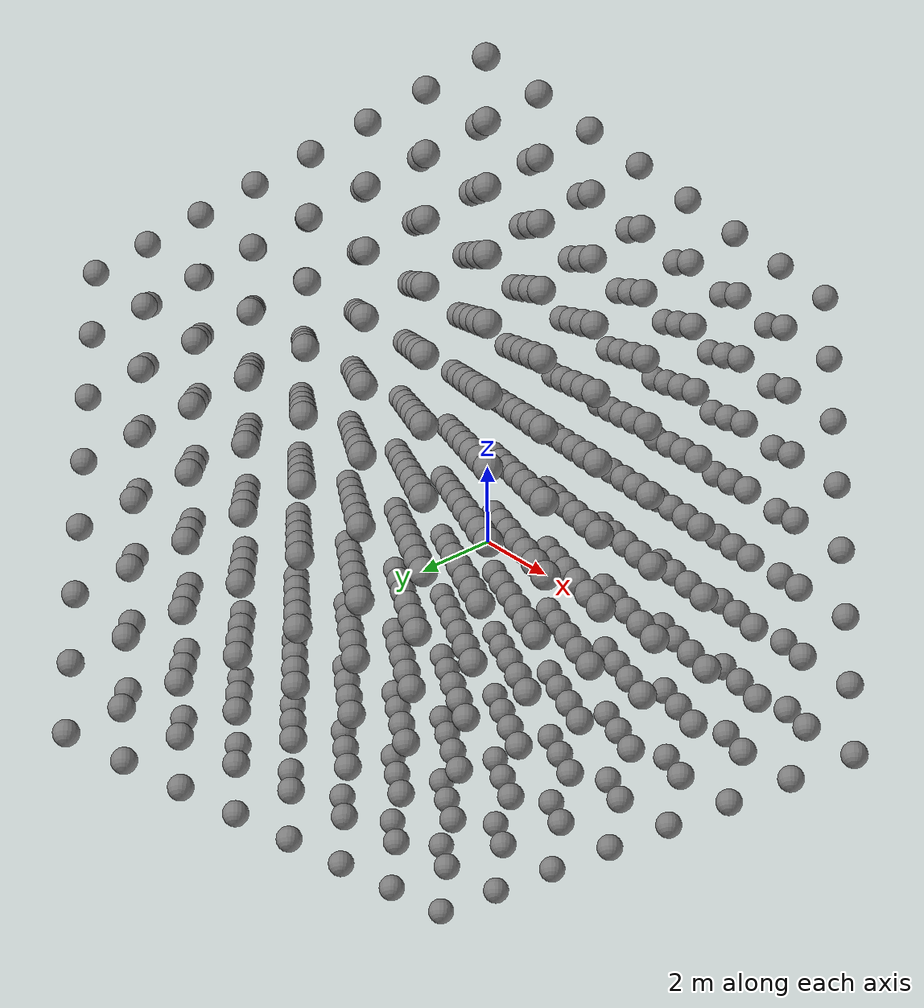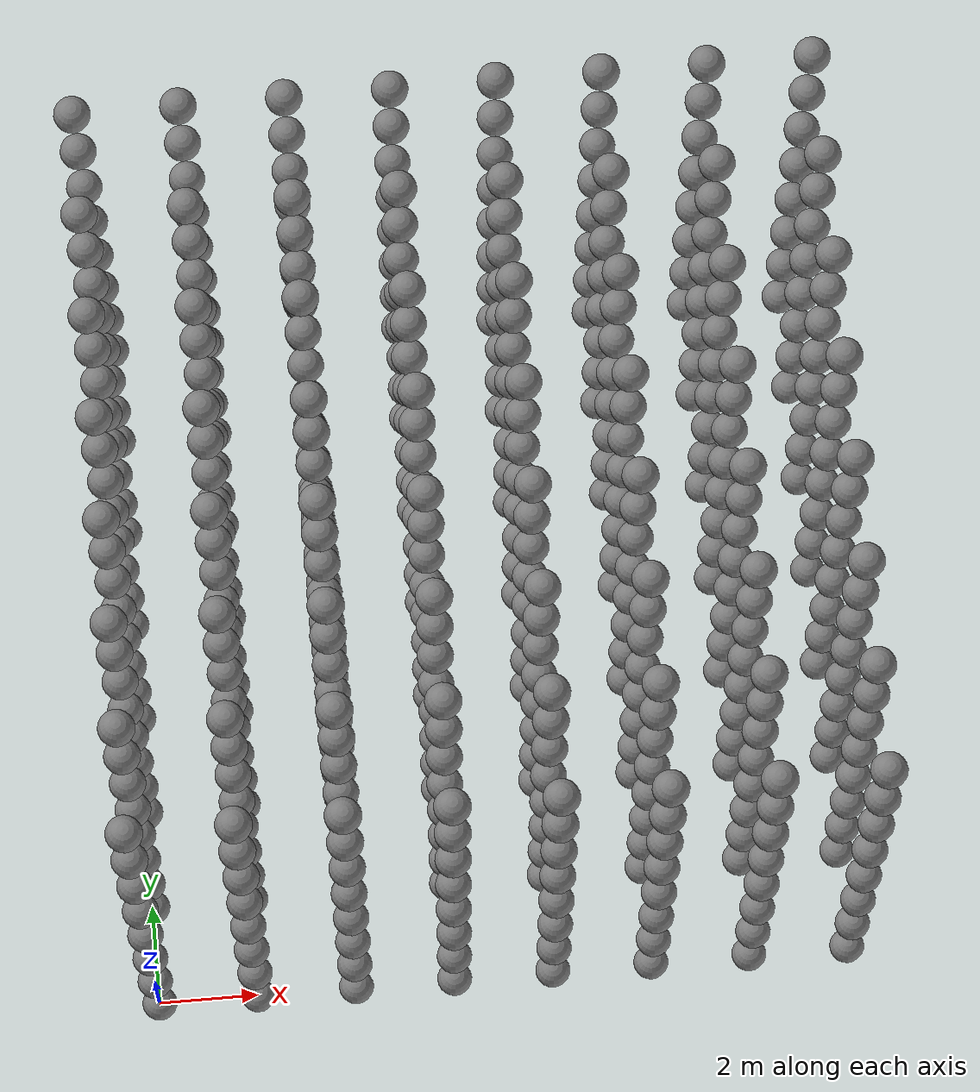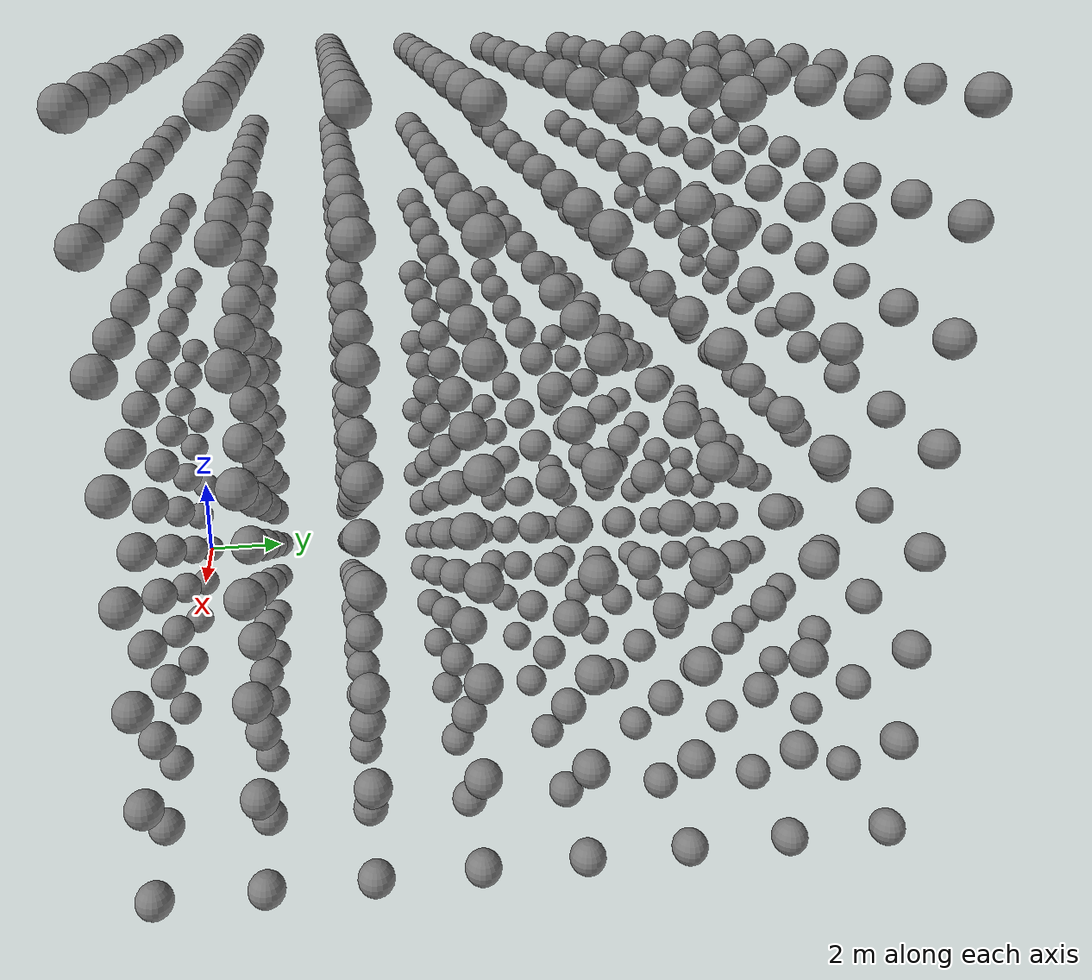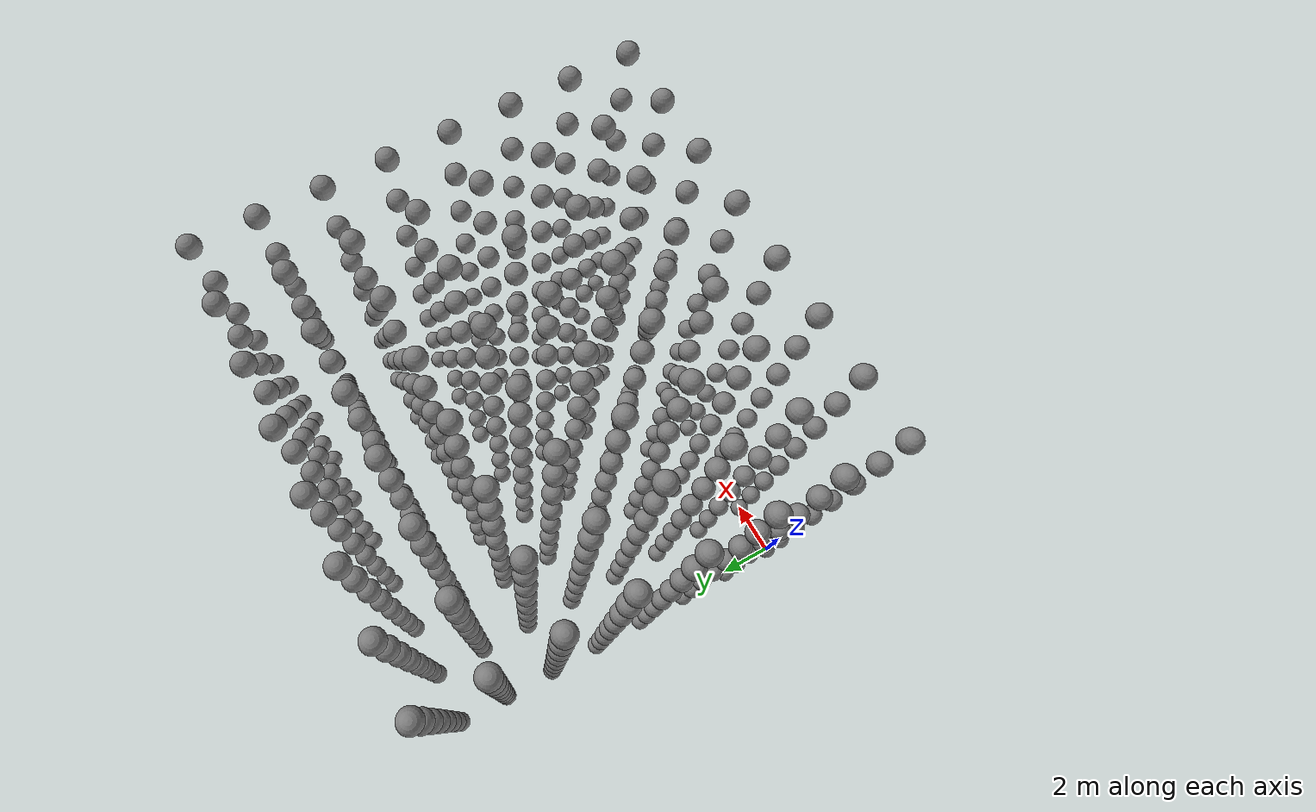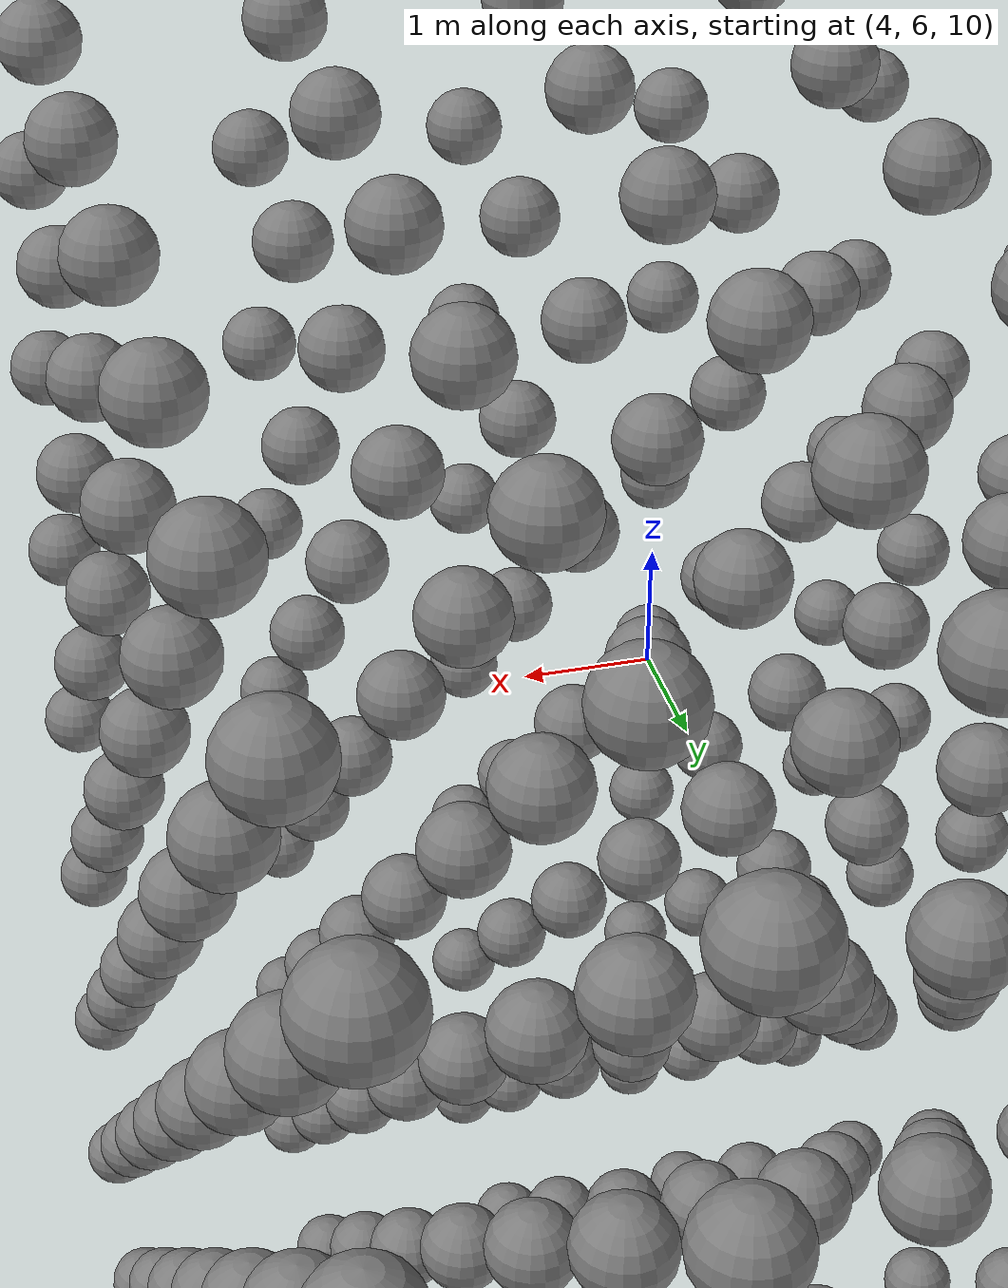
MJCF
<mujoco><option ccd_iterations="100"/><worldbody><body pos="0 0 0"><freejoint/><geom type="sphere" size=".35 .4 .45"/></body><body pos="2 0 0"><freejoint/><geom type="sphere" size=".35 .4 .45"/></body><body pos="4 0 0"><freejoint/><geom type="sphere" size=".35 .4 .45"/></body><body pos="6 0 0"><freejoint/><geom type="sphere" size=".35 .4 .45"/></body><body pos="8 0 0"><freejoint/><geom type="sphere" size=".35 .4 .45"/></body><body pos="10 0 0"><freejoint/><geom type="sphere" size=".35 .4 .45"/></body><body pos="12 0 0"><freejoint/><geom type="sphere" size=".35 .4 .45"/></body><body pos="14 0 0"><freejoint/><geom type="sphere" size=".35 .4 .45"/></body><body pos="0 2 0"><freejoint/><geom type="sphere" size=".35 .4 .45"/></body><body pos="2 2 0"><freejoint/><geom type="sphere" size=".35 .4 .45"/></body><body pos="4 2 0"><freejoint/><geom type="sphere" size=".35 .4 .45"/></body><body pos="6 2 0"><freejoint/><geom type="sphere" size=".35 .4 .45"/></body><body pos="8 2 0"><freejoint/><geom type="sphere" size=".35 .4 .45"/></body><body pos="10 2 0"><freejoint/><geom type="sphere" size=".35 .4 .45"/></body><body pos="12 2 0"><freejoint/><geom type="sphere" size=".35 .4 .45"/></body><body pos="14 2 0"><freejoint/><geom type="sphere" size=".35 .4 .45"/></body><body pos="0 4 0"><freejoint/><geom type="sphere" size=".35 .4 .45"/></body><body pos="2 4 0"><freejoint/><geom type="sphere" size=".35 .4 .45"/></body><body pos="4 4 0"><freejoint/><geom type="sphere" size=".35 .4 .45"/></body><body pos="6 4 0"><freejoint/><geom type="sphere" size=".35 .4 .45"/></body><body pos="8 4 0"><freejoint/><geom type="sphere" size=".35 .4 .45"/></body><body pos="10 4 0"><freejoint/><geom type="sphere" size=".35 .4 .45"/></body><body pos="12 4 0"><freejoint/><geom type="sphere" size=".35 .4 .45"/></body><body pos="14 4 0"><freejoint/><geom type="sphere" size=".35 .4 .45"/></body><body pos="0 6 0"><freejoint/><geom type="sphere" size=".35 .4 .45"/></body><body pos="2 6 0"><freejoint/><geom type="sphere" size=".35 .4 .45"/></body><body pos="4 6 0"><freejoint/><geom type="sphere" size=".35 .4 .45"/></body><body pos="6 6 0"><freejoint/><geom type="sphere" size=".35 .4 .45"/></body><body pos="8 6 0"><freejoint/><geom type="sphere" size=".35 .4 .45"/></body><body pos="10 6 0"><freejoint/><geom type="sphere" size=".35 .4 .45"/></body><body pos="12 6 0"><freejoint/><geom type="sphere" size=".35 .4 .45"/></body><body pos="14 6 0"><freejoint/><geom type="sphere" size=".35 .4 .45"/></body><body pos="0 8 0"><freejoint/><geom type="sphere" size=".35 .4 .45"/></body><body pos="2 8 0"><freejoint/><geom type="sphere" size=".35 .4 .45"/></body><body pos="4 8 0"><freejoint/><geom type="sphere" size=".35 .4 .45"/></body><body pos="6 8 0"><freejoint/><geom type="sphere" size=".35 .4 .45"/></body><body pos="8 8 0"><freejoint/><geom type="sphere" size=".35 .4 .45"/></body><body pos="10 8 0"><freejoint/><geom type="sphere" size=".35 .4 .45"/></body><body pos="12 8 0"><freejoint/><geom type="sphere" size=".35 .4 .45"/></body><body pos="14 8 0"><freejoint/><geom type="sphere" size=".35 .4 .45"/></body><body pos="0 10 0"><freejoint/><geom type="sphere" size=".35 .4 .45"/></body><body pos="2 10 0"><freejoint/><geom type="sphere" size=".35 .4 .45"/></body><body pos="4 10 0"><freejoint/><geom type="sphere" size=".35 .4 .45"/></body><body pos="6 10 0"><freejoint/><geom type="sphere" size=".35 .4 .45"/></body><body pos="8 10 0"><freejoint/><geom type="sphere" size=".35 .4 .45"/></body><body pos="10 10 0"><freejoint/><geom type="sphere" size=".35 .4 .45"/></body><body pos="12 10 0"><freejoint/><geom type="sphere" size=".35 .4 .45"/></body><body pos="14 10 0"><freejoint/><geom type="sphere" size=".35 .4 .45"/></body><body pos="0 12 0"><freejoint/><geom type="sphere" size=".35 .4 .45"/></body><body pos="2 12 0"><freejoint/><geom type="sphere" size=".35 .4 .45"/></body><body pos="4 12 0"><freejoint/><geom type="sphere" size=".35 .4 .45"/></body><body pos="6 12 0"><freejoint/><geom type="sphere" size=".35 .4 .45"/></body><body pos="8 12 0"><freejoint/><geom type="sphere" size=".35 .4 .45"/></body><body pos="10 12 0"><freejoint/><geom type="sphere" size=".35 .4 .45"/></body><body pos="12 12 0"><freejoint/><geom type="sphere" size=".35 .4 .45"/></body><body pos="14 12 0"><freejoint/><geom type="sphere" size=".35 .4 .45"/></body><body pos="0 14 0"><freejoint/><geom type="sphere" size=".35 .4 .45"/></body><body pos="2 14 0"><freejoint/><geom type="sphere" size=".35 .4 .45"/></body><body pos="4 14 0"><freejoint/><geom type="sphere" size=".35 .4 .45"/></body><body pos="6 14 0"><freejoint/><geom type="sphere" size=".35 .4 .45"/></body><body pos="8 14 0"><freejoint/><geom type="sphere" size=".35 .4 .45"/></body><body pos="10 14 0"><freejoint/><geom type="sphere" size=".35 .4 .45"/></body><body pos="12 14 0"><freejoint/><geom type="sphere" size=".35 .4 .45"/></body><body pos="14 14 0"><freejoint/><geom type="sphere" size=".35 .4 .45"/></body><body pos="0 0 2"><freejoint/><geom type="sphere" size=".35 .4 .45"/></body><body pos="2 0 2"><freejoint/><geom type="sphere" size=".35 .4 .45"/></body><body pos="4 0 2"><freejoint/><geom type="sphere" size=".35 .4 .45"/></body><body pos="6 0 2"><freejoint/><geom type="sphere" size=".35 .4 .45"/></body><body pos="8 0 2"><freejoint/><geom type="sphere" size=".35 .4 .45"/></body><body pos="10 0 2"><freejoint/><geom type="sphere" size=".35 .4 .45"/></body><body pos="12 0 2"><freejoint/><geom type="sphere" size=".35 .4 .45"/></body><body pos="14 0 2"><freejoint/><geom type="sphere" size=".35 .4 .45"/></body><body pos="0 2 2"><freejoint/><geom type="sphere" size=".35 .4 .45"/></body><body pos="2 2 2"><freejoint/><geom type="sphere" size=".35 .4 .45"/></body><body pos="4 2 2"><freejoint/><geom type="sphere" size=".35 .4 .45"/></body><body pos="6 2 2"><freejoint/><geom type="sphere" size=".35 .4 .45"/></body><body pos="8 2 2"><freejoint/><geom type="sphere" size=".35 .4 .45"/></body><body pos="10 2 2"><freejoint/><geom type="sphere" size=".35 .4 .45"/></body><body pos="12 2 2"><freejoint/><geom type="sphere" size=".35 .4 .45"/></body><body pos="14 2 2"><freejoint/><geom type="sphere" size=".35 .4 .45"/></body><body pos="0 4 2"><freejoint/><geom type="sphere" size=".35 .4 .45"/></body><body pos="2 4 2"><freejoint/><geom type="sphere" size=".35 .4 .45"/></body><body pos="4 4 2"><freejoint/><geom type="sphere" size=".35 .4 .45"/></body><body pos="6 4 2"><freejoint/><geom type="sphere" size=".35 .4 .45"/></body><body pos="8 4 2"><freejoint/><geom type="sphere" size=".35 .4 .45"/></body><body pos="10 4 2"><freejoint/><geom type="sphere" size=".35 .4 .45"/></body><body pos="12 4 2"><freejoint/><geom type="sphere" size=".35 .4 .45"/></body><body pos="14 4 2"><freejoint/><geom type="sphere" size=".35 .4 .45"/></body><body pos="0 6 2"><freejoint/><geom type="sphere" size=".35 .4 .45"/></body><body pos="2 6 2"><freejoint/><geom type="sphere" size=".35 .4 .45"/></body><body pos="4 6 2"><freejoint/><geom type="sphere" size=".35 .4 .45"/></body><body pos="6 6 2"><freejoint/><geom type="sphere" size=".35 .4 .45"/></body><body pos="8 6 2"><freejoint/><geom type="sphere" size=".35 .4 .45"/></body><body pos="10 6 2"><freejoint/><geom type="sphere" size=".35 .4 .45"/></body><body pos="12 6 2"><freejoint/><geom type="sphere" size=".35 .4 .45"/></body><body pos="14 6 2"><freejoint/><geom type="sphere" size=".35 .4 .45"/></body><body pos="0 8 2"><freejoint/><geom type="sphere" size=".35 .4 .45"/></body><body pos="2 8 2"><freejoint/><geom type="sphere" size=".35 .4 .45"/></body><body pos="4 8 2"><freejoint/><geom type="sphere" size=".35 .4 .45"/></body><body pos="6 8 2"><freejoint/><geom type="sphere" size=".35 .4 .45"/></body><body pos="8 8 2"><freejoint/><geom type="sphere" size=".35 .4 .45"/></body><body pos="10 8 2"><freejoint/><geom type="sphere" size=".35 .4 .45"/></body><body pos="12 8 2"><freejoint/><geom type="sphere" size=".35 .4 .45"/></body><body pos="14 8 2"><freejoint/><geom type="sphere" size=".35 .4 .45"/></body><body pos="0 10 2"><freejoint/><geom type="sphere" size=".35 .4 .45"/></body><body pos="2 10 2"><freejoint/><geom type="sphere" size=".35 .4 .45"/></body><body pos="4 10 2"><freejoint/><geom type="sphere" size=".35 .4 .45"/></body><body pos="6 10 2"><freejoint/><geom type="sphere" size=".35 .4 .45"/></body><body pos="8 10 2"><freejoint/><geom type="sphere" size=".35 .4 .45"/></body><body pos="10 10 2"><freejoint/><geom type="sphere" size=".35 .4 .45"/></body><body pos="12 10 2"><freejoint/><geom type="sphere" size=".35 .4 .45"/></body><body pos="14 10 2"><freejoint/><geom type="sphere" size=".35 .4 .45"/></body><body pos="0 12 2"><freejoint/><geom type="sphere" size=".35 .4 .45"/></body><body pos="2 12 2"><freejoint/><geom type="sphere" size=".35 .4 .45"/></body><body pos="4 12 2"><freejoint/><geom type="sphere" size=".35 .4 .45"/></body><body pos="6 12 2"><freejoint/><geom type="sphere" size=".35 .4 .45"/></body><body pos="8 12 2"><freejoint/><geom type="sphere" size=".35 .4 .45"/></body><body pos="10 12 2"><freejoint/><geom type="sphere" size=".35 .4 .45"/></body><body pos="12 12 2"><freejoint/><geom type="sphere" size=".35 .4 .45"/></body><body pos="14 12 2"><freejoint/><geom type="sphere" size=".35 .4 .45"/></body><body pos="0 14 2"><freejoint/><geom type="sphere" size=".35 .4 .45"/></body><body pos="2 14 2"><freejoint/><geom type="sphere" size=".35 .4 .45"/></body><body pos="4 14 2"><freejoint/><geom type="sphere" size=".35 .4 .45"/></body><body pos="6 14 2"><freejoint/><geom type="sphere" size=".35 .4 .45"/></body><body pos="8 14 2"><freejoint/><geom type="sphere" size=".35 .4 .45"/></body><body pos="10 14 2"><freejoint/><geom type="sphere" size=".35 .4 .45"/></body><body pos="12 14 2"><freejoint/><geom type="sphere" size=".35 .4 .45"/></body><body pos="14 14 2"><freejoint/><geom type="sphere" size=".35 .4 .45"/></body><body pos="0 0 4"><freejoint/><geom type="sphere" size=".35 .4 .45"/></body><body pos="2 0 4"><freejoint/><geom type="sphere" size=".35 .4 .45"/></body><body pos="4 0 4"><freejoint/><geom type="sphere" size=".35 .4 .45"/></body><body pos="6 0 4"><freejoint/><geom type="sphere" size=".35 .4 .45"/></body><body pos="8 0 4"><freejoint/><geom type="sphere" size=".35 .4 .45"/></body><body pos="10 0 4"><freejoint/><geom type="sphere" size=".35 .4 .45"/></body><body pos="12 0 4"><freejoint/><geom type="sphere" size=".35 .4 .45"/></body><body pos="14 0 4"><freejoint/><geom type="sphere" size=".35 .4 .45"/></body><body pos="0 2 4"><freejoint/><geom type="sphere" size=".35 .4 .45"/></body><body pos="2 2 4"><freejoint/><geom type="sphere" size=".35 .4 .45"/></body><body pos="4 2 4"><freejoint/><geom type="sphere" size=".35 .4 .45"/></body><body pos="6 2 4"><freejoint/><geom type="sphere" size=".35 .4 .45"/></body><body pos="8 2 4"><freejoint/><geom type="sphere" size=".35 .4 .45"/></body><body pos="10 2 4"><freejoint/><geom type="sphere" size=".35 .4 .45"/></body><body pos="12 2 4"><freejoint/><geom type="sphere" size=".35 .4 .45"/></body><body pos="14 2 4"><freejoint/><geom type="sphere" size=".35 .4 .45"/></body><body pos="0 4 4"><freejoint/><geom type="sphere" size=".35 .4 .45"/></body><body pos="2 4 4"><freejoint/><geom type="sphere" size=".35 .4 .45"/></body><body pos="4 4 4"><freejoint/><geom type="sphere" size=".35 .4 .45"/></body><body pos="6 4 4"><freejoint/><geom type="sphere" size=".35 .4 .45"/></body><body pos="8 4 4"><freejoint/><geom type="sphere" size=".35 .4 .45"/></body><body pos="10 4 4"><freejoint/><geom type="sphere" size=".35 .4 .45"/></body><body pos="12 4 4"><freejoint/><geom type="sphere" size=".35 .4 .45"/></body><body pos="14 4 4"><freejoint/><geom type="sphere" size=".35 .4 .45"/></body><body pos="0 6 4"><freejoint/><geom type="sphere" size=".35 .4 .45"/></body><body pos="2 6 4"><freejoint/><geom type="sphere" size=".35 .4 .45"/></body><body pos="4 6 4"><freejoint/><geom type="sphere" size=".35 .4 .45"/></body><body pos="6 6 4"><freejoint/><geom type="sphere" size=".35 .4 .45"/></body><body pos="8 6 4"><freejoint/><geom type="sphere" size=".35 .4 .45"/></body><body pos="10 6 4"><freejoint/><geom type="sphere" size=".35 .4 .45"/></body><body pos="12 6 4"><freejoint/><geom type="sphere" size=".35 .4 .45"/></body><body pos="14 6 4"><freejoint/><geom type="sphere" size=".35 .4 .45"/></body><body pos="0 8 4"><freejoint/><geom type="sphere" size=".35 .4 .45"/></body><body pos="2 8 4"><freejoint/><geom type="sphere" size=".35 .4 .45"/></body><body pos="4 8 4"><freejoint/><geom type="sphere" size=".35 .4 .45"/></body><body pos="6 8 4"><freejoint/><geom type="sphere" size=".35 .4 .45"/></body><body pos="8 8 4"><freejoint/><geom type="sphere" size=".35 .4 .45"/></body><body pos="10 8 4"><freejoint/><geom type="sphere" size=".35 .4 .45"/></body><body pos="12 8 4"><freejoint/><geom type="sphere" size=".35 .4 .45"/></body><body pos="14 8 4"><freejoint/><geom type="sphere" size=".35 .4 .45"/></body><body pos="0 10 4"><freejoint/><geom type="sphere" size=".35 .4 .45"/></body><body pos="2 10 4"><freejoint/><geom type="sphere" size=".35 .4 .45"/></body><body pos="4 10 4"><freejoint/><geom type="sphere" size=".35 .4 .45"/></body><body pos="6 10 4"><freejoint/><geom type="sphere" size=".35 .4 .45"/></body><body pos="8 10 4"><freejoint/><geom type="sphere" size=".35 .4 .45"/></body><body pos="10 10 4"><freejoint/><geom type="sphere" size=".35 .4 .45"/></body><body pos="12 10 4"><freejoint/><geom type="sphere" size=".35 .4 .45"/></body><body pos="14 10 4"><freejoint/><geom type="sphere" size=".35 .4 .45"/></body><body pos="0 12 4"><freejoint/><geom type="sphere" size=".35 .4 .45"/></body><body pos="2 12 4"><freejoint/><geom type="sphere" size=".35 .4 .45"/></body><body pos="4 12 4"><freejoint/><geom type="sphere" size=".35 .4 .45"/></body><body pos="6 12 4"><freejoint/><geom type="sphere" size=".35 .4 .45"/></body><body pos="8 12 4"><freejoint/><geom type="sphere" size=".35 .4 .45"/></body><body pos="10 12 4"><freejoint/><geom type="sphere" size=".35 .4 .45"/></body><body pos="12 12 4"><freejoint/><geom type="sphere" size=".35 .4 .45"/></body><body pos="14 12 4"><freejoint/><geom type="sphere" size=".35 .4 .45"/></body><body pos="0 14 4"><freejoint/><geom type="sphere" size=".35 .4 .45"/></body><body pos="2 14 4"><freejoint/><geom type="sphere" size=".35 .4 .45"/></body><body pos="4 14 4"><freejoint/><geom type="sphere" size=".35 .4 .45"/></body><body pos="6 14 4"><freejoint/><geom type="sphere" size=".35 .4 .45"/></body><body pos="8 14 4"><freejoint/><geom type="sphere" size=".35 .4 .45"/></body><body pos="10 14 4"><freejoint/><geom type="sphere" size=".35 .4 .45"/></body><body pos="12 14 4"><freejoint/><geom type="sphere" size=".35 .4 .45"/></body><body pos="14 14 4"><freejoint/><geom type="sphere" size=".35 .4 .45"/></body><body pos="0 0 6"><freejoint/><geom type="sphere" size=".35 .4 .45"/></body><body pos="2 0 6"><freejoint/><geom type="sphere" size=".35 .4 .45"/></body><body pos="4 0 6"><freejoint/><geom type="sphere" size=".35 .4 .45"/></body><body pos="6 0 6"><freejoint/><geom type="sphere" size=".35 .4 .45"/></body><body pos="8 0 6"><freejoint/><geom type="sphere" size=".35 .4 .45"/></body><body pos="10 0 6"><freejoint/><geom type="sphere" size=".35 .4 .45"/></body><body pos="12 0 6"><freejoint/><geom type="sphere" size=".35 .4 .45"/></body><body pos="14 0 6"><freejoint/><geom type="sphere" size=".35 .4 .45"/></body><body pos="0 2 6"><freejoint/><geom type="sphere" size=".35 .4 .45"/></body><body pos="2 2 6"><freejoint/><geom type="sphere" size=".35 .4 .45"/></body><body pos="4 2 6"><freejoint/><geom type="sphere" size=".35 .4 .45"/></body><body pos="6 2 6"><freejoint/><geom type="sphere" size=".35 .4 .45"/></body><body pos="8 2 6"><freejoint/><geom type="sphere" size=".35 .4 .45"/></body><body pos="10 2 6"><freejoint/><geom type="sphere" size=".35 .4 .45"/></body><body pos="12 2 6"><freejoint/><geom type="sphere" size=".35 .4 .45"/></body><body pos="14 2 6"><freejoint/><geom type="sphere" size=".35 .4 .45"/></body><body pos="0 4 6"><freejoint/><geom type="sphere" size=".35 .4 .45"/></body><body pos="2 4 6"><freejoint/><geom type="sphere" size=".35 .4 .45"/></body><body pos="4 4 6"><freejoint/><geom type="sphere" size=".35 .4 .45"/></body><body pos="6 4 6"><freejoint/><geom type="sphere" size=".35 .4 .45"/></body><body pos="8 4 6"><freejoint/><geom type="sphere" size=".35 .4 .45"/></body><body pos="10 4 6"><freejoint/><geom type="sphere" size=".35 .4 .45"/></body><body pos="12 4 6"><freejoint/><geom type="sphere" size=".35 .4 .45"/></body><body pos="14 4 6"><freejoint/><geom type="sphere" size=".35 .4 .45"/></body><body pos="0 6 6"><freejoint/><geom type="sphere" size=".35 .4 .45"/></body><body pos="2 6 6"><freejoint/><geom type="sphere" size=".35 .4 .45"/></body><body pos="4 6 6"><freejoint/><geom type="sphere" size=".35 .4 .45"/></body><body pos="6 6 6"><freejoint/><geom type="sphere" size=".35 .4 .45"/></body><body pos="8 6 6"><freejoint/><geom type="sphere" size=".35 .4 .45"/></body><body pos="10 6 6"><freejoint/><geom type="sphere" size=".35 .4 .45"/></body><body pos="12 6 6"><freejoint/><geom type="sphere" size=".35 .4 .45"/></body><body pos="14 6 6"><freejoint/><geom type="sphere" size=".35 .4 .45"/></body><body pos="0 8 6"><freejoint/><geom type="sphere" size=".35 .4 .45"/></body><body pos="2 8 6"><freejoint/><geom type="sphere" size=".35 .4 .45"/></body><body pos="4 8 6"><freejoint/><geom type="sphere" size=".35 .4 .45"/></body><body pos="6 8 6"><freejoint/><geom type="sphere" size=".35 .4 .45"/></body><body pos="8 8 6"><freejoint/><geom type="sphere" size=".35 .4 .45"/></body><body pos="10 8 6"><freejoint/><geom type="sphere" size=".35 .4 .45"/></body><body pos="12 8 6"><freejoint/><geom type="sphere" size=".35 .4 .45"/></body><body pos="14 8 6"><freejoint/><geom type="sphere" size=".35 .4 .45"/></body><body pos="0 10 6"><freejoint/><geom type="sphere" size=".35 .4 .45"/></body><body pos="2 10 6"><freejoint/><geom type="sphere" size=".35 .4 .45"/></body><body pos="4 10 6"><freejoint/><geom type="sphere" size=".35 .4 .45"/></body><body pos="6 10 6"><freejoint/><geom type="sphere" size=".35 .4 .45"/></body><body pos="8 10 6"><freejoint/><geom type="sphere" size=".35 .4 .45"/></body><body pos="10 10 6"><freejoint/><geom type="sphere" size=".35 .4 .45"/></body><body pos="12 10 6"><freejoint/><geom type="sphere" size=".35 .4 .45"/></body><body pos="14 10 6"><freejoint/><geom type="sphere" size=".35 .4 .45"/></body><body pos="0 12 6"><freejoint/><geom type="sphere" size=".35 .4 .45"/></body><body pos="2 12 6"><freejoint/><geom type="sphere" size=".35 .4 .45"/></body><body pos="4 12 6"><freejoint/><geom type="sphere" size=".35 .4 .45"/></body><body pos="6 12 6"><freejoint/><geom type="sphere" size=".35 .4 .45"/></body><body pos="8 12 6"><freejoint/><geom type="sphere" size=".35 .4 .45"/></body><body pos="10 12 6"><freejoint/><geom type="sphere" size=".35 .4 .45"/></body><body pos="12 12 6"><freejoint/><geom type="sphere" size=".35 .4 .45"/></body><body pos="14 12 6"><freejoint/><geom type="sphere" size=".35 .4 .45"/></body><body pos="0 14 6"><freejoint/><geom type="sphere" size=".35 .4 .45"/></body><body pos="2 14 6"><freejoint/><geom type="sphere" size=".35 .4 .45"/></body><body pos="4 14 6"><freejoint/><geom type="sphere" size=".35 .4 .45"/></body><body pos="6 14 6"><freejoint/><geom type="sphere" size=".35 .4 .45"/></body><body pos="8 14 6"><freejoint/><geom type="sphere" size=".35 .4 .45"/></body><body pos="10 14 6"><freejoint/><geom type="sphere" size=".35 .4 .45"/></body><body pos="12 14 6"><freejoint/><geom type="sphere" size=".35 .4 .45"/></body><body pos="14 14 6"><freejoint/><geom type="sphere" size=".35 .4 .45"/></body><body pos="0 0 8"><freejoint/><geom type="sphere" size=".35 .4 .45"/></body><body pos="2 0 8"><freejoint/><geom type="sphere" size=".35 .4 .45"/></body><body pos="4 0 8"><freejoint/><geom type="sphere" size=".35 .4 .45"/></body><body pos="6 0 8"><freejoint/><geom type="sphere" size=".35 .4 .45"/></body><body pos="8 0 8"><freejoint/><geom type="sphere" size=".35 .4 .45"/></body><body pos="10 0 8"><freejoint/><geom type="sphere" size=".35 .4 .45"/></body><body pos="12 0 8"><freejoint/><geom type="sphere" size=".35 .4 .45"/></body><body pos="14 0 8"><freejoint/><geom type="sphere" size=".35 .4 .45"/></body><body pos="0 2 8"><freejoint/><geom type="sphere" size=".35 .4 .45"/></body><body pos="2 2 8"><freejoint/><geom type="sphere" size=".35 .4 .45"/></body><body pos="4 2 8"><freejoint/><geom type="sphere" size=".35 .4 .45"/></body><body pos="6 2 8"><freejoint/><geom type="sphere" size=".35 .4 .45"/></body><body pos="8 2 8"><freejoint/><geom type="sphere" size=".35 .4 .45"/></body><body pos="10 2 8"><freejoint/><geom type="sphere" size=".35 .4 .45"/></body><body pos="12 2 8"><freejoint/><geom type="sphere" size=".35 .4 .45"/></body><body pos="14 2 8"><freejoint/><geom type="sphere" size=".35 .4 .45"/></body><body pos="0 4 8"><freejoint/><geom type="sphere" size=".35 .4 .45"/></body><body pos="2 4 8"><freejoint/><geom type="sphere" size=".35 .4 .45"/></body><body pos="4 4 8"><freejoint/><geom type="sphere" size=".35 .4 .45"/></body><body pos="6 4 8"><freejoint/><geom type="sphere" size=".35 .4 .45"/></body><body pos="8 4 8"><freejoint/><geom type="sphere" size=".35 .4 .45"/></body><body pos="10 4 8"><freejoint/><geom type="sphere" size=".35 .4 .45"/></body><body pos="12 4 8"><freejoint/><geom type="sphere" size=".35 .4 .45"/></body><body pos="14 4 8"><freejoint/><geom type="sphere" size=".35 .4 .45"/></body><body pos="0 6 8"><freejoint/><geom type="sphere" size=".35 .4 .45"/></body><body pos="2 6 8"><freejoint/><geom type="sphere" size=".35 .4 .45"/></body><body pos="4 6 8"><freejoint/><geom type="sphere" size=".35 .4 .45"/></body><body pos="6 6 8"><freejoint/><geom type="sphere" size=".35 .4 .45"/></body><body pos="8 6 8"><freejoint/><geom type="sphere" size=".35 .4 .45"/></body><body pos="10 6 8"><freejoint/><geom type="sphere" size=".35 .4 .45"/></body><body pos="12 6 8"><freejoint/><geom type="sphere" size=".35 .4 .45"/></body><body pos="14 6 8"><freejoint/><geom type="sphere" size=".35 .4 .45"/></body><body pos="0 8 8"><freejoint/><geom type="sphere" size=".35 .4 .45"/></body><body pos="2 8 8"><freejoint/><geom type="sphere" size=".35 .4 .45"/></body><body pos="4 8 8"><freejoint/><geom type="sphere" size=".35 .4 .45"/></body><body pos="6 8 8"><freejoint/><geom type="sphere" size=".35 .4 .45"/></body><body pos="8 8 8"><freejoint/><geom type="sphere" size=".35 .4 .45"/></body><body pos="10 8 8"><freejoint/><geom type="sphere" size=".35 .4 .45"/></body><body pos="12 8 8"><freejoint/><geom type="sphere" size=".35 .4 .45"/></body><body pos="14 8 8"><freejoint/><geom type="sphere" size=".35 .4 .45"/></body><body pos="0 10 8"><freejoint/><geom type="sphere" size=".35 .4 .45"/></body><body pos="2 10 8"><freejoint/><geom type="sphere" size=".35 .4 .45"/></body><body pos="4 10 8"><freejoint/><geom type="sphere" size=".35 .4 .45"/></body><body pos="6 10 8"><freejoint/><geom type="sphere" size=".35 .4 .45"/></body><body pos="8 10 8"><freejoint/><geom type="sphere" size=".35 .4 .45"/></body><body pos="10 10 8"><freejoint/><geom type="sphere" size=".35 .4 .45"/></body><body pos="12 10 8"><freejoint/><geom type="sphere" size=".35 .4 .45"/></body><body pos="14 10 8"><freejoint/><geom type="sphere" size=".35 .4 .45"/></body><body pos="0 12 8"><freejoint/><geom type="sphere" size=".35 .4 .45"/></body><body pos="2 12 8"><freejoint/><geom type="sphere" size=".35 .4 .45"/></body><body pos="4 12 8"><freejoint/><geom type="sphere" size=".35 .4 .45"/></body><body pos="6 12 8"><freejoint/><geom type="sphere" size=".35 .4 .45"/></body><body pos="8 12 8"><freejoint/><geom type="sphere" size=".35 .4 .45"/></body><body pos="10 12 8"><freejoint/><geom type="sphere" size=".35 .4 .45"/></body><body pos="12 12 8"><freejoint/><geom type="sphere" size=".35 .4 .45"/></body><body pos="14 12 8"><freejoint/><geom type="sphere" size=".35 .4 .45"/></body><body pos="0 14 8"><freejoint/><geom type="sphere" size=".35 .4 .45"/></body><body pos="2 14 8"><freejoint/><geom type="sphere" size=".35 .4 .45"/></body><body pos="4 14 8"><freejoint/><geom type="sphere" size=".35 .4 .45"/></body><body pos="6 14 8"><freejoint/><geom type="sphere" size=".35 .4 .45"/></body><body pos="8 14 8"><freejoint/><geom type="sphere" size=".35 .4 .45"/></body><body pos="10 14 8"><freejoint/><geom type="sphere" size=".35 .4 .45"/></body><body pos="12 14 8"><freejoint/><geom type="sphere" size=".35 .4 .45"/></body><body pos="14 14 8"><freejoint/><geom type="sphere" size=".35 .4 .45"/></body><body pos="0 0 10"><freejoint/><geom type="sphere" size=".35 .4 .45"/></body><body pos="2 0 10"><freejoint/><geom type="sphere" size=".35 .4 .45"/></body><body pos="4 0 10"><freejoint/><geom type="sphere" size=".35 .4 .45"/></body><body pos="6 0 10"><freejoint/><geom type="sphere" size=".35 .4 .45"/></body><body pos="8 0 10"><freejoint/><geom type="sphere" size=".35 .4 .45"/></body><body pos="10 0 10"><freejoint/><geom type="sphere" size=".35 .4 .45"/></body><body pos="12 0 10"><freejoint/><geom type="sphere" size=".35 .4 .45"/></body><body pos="14 0 10"><freejoint/><geom type="sphere" size=".35 .4 .45"/></body><body pos="0 2 10"><freejoint/><geom type="sphere" size=".35 .4 .45"/></body><body pos="2 2 10"><freejoint/><geom type="sphere" size=".35 .4 .45"/></body><body pos="4 2 10"><freejoint/><geom type="sphere" size=".35 .4 .45"/></body><body pos="6 2 10"><freejoint/><geom type="sphere" size=".35 .4 .45"/></body><body pos="8 2 10"><freejoint/><geom type="sphere" size=".35 .4 .45"/></body><body pos="10 2 10"><freejoint/><geom type="sphere" size=".35 .4 .45"/></body><body pos="12 2 10"><freejoint/><geom type="sphere" size=".35 .4 .45"/></body><body pos="14 2 10"><freejoint/><geom type="sphere" size=".35 .4 .45"/></body><body pos="0 4 10"><freejoint/><geom type="sphere" size=".35 .4 .45"/></body><body pos="2 4 10"><freejoint/><geom type="sphere" size=".35 .4 .45"/></body><body pos="4 4 10"><freejoint/><geom type="sphere" size=".35 .4 .45"/></body><body pos="6 4 10"><freejoint/><geom type="sphere" size=".35 .4 .45"/></body><body pos="8 4 10"><freejoint/><geom type="sphere" size=".35 .4 .45"/></body><body pos="10 4 10"><freejoint/><geom type="sphere" size=".35 .4 .45"/></body><body pos="12 4 10"><freejoint/><geom type="sphere" size=".35 .4 .45"/></body><body pos="14 4 10"><freejoint/><geom type="sphere" size=".35 .4 .45"/></body><body pos="0 6 10"><freejoint/><geom type="sphere" size=".35 .4 .45"/></body><body pos="2 6 10"><freejoint/><geom type="sphere" size=".35 .4 .45"/></body><body pos="4 6 10"><freejoint/><geom type="sphere" size=".35 .4 .45"/></body><body pos="6 6 10"><freejoint/><geom type="sphere" size=".35 .4 .45"/></body><body pos="8 6 10"><freejoint/><geom type="sphere" size=".35 .4 .45"/></body><body pos="10 6 10"><freejoint/><geom type="sphere" size=".35 .4 .45"/></body><body pos="12 6 10"><freejoint/><geom type="sphere" size=".35 .4 .45"/></body><body pos="14 6 10"><freejoint/><geom type="sphere" size=".35 .4 .45"/></body><body pos="0 8 10"><freejoint/><geom type="sphere" size=".35 .4 .45"/></body><body pos="2 8 10"><freejoint/><geom type="sphere" size=".35 .4 .45"/></body><body pos="4 8 10"><freejoint/><geom type="sphere" size=".35 .4 .45"/></body><body pos="6 8 10"><freejoint/><geom type="sphere" size=".35 .4 .45"/></body><body pos="8 8 10"><freejoint/><geom type="sphere" size=".35 .4 .45"/></body><body pos="10 8 10"><freejoint/><geom type="sphere" size=".35 .4 .45"/></body><body pos="12 8 10"><freejoint/><geom type="sphere" size=".35 .4 .45"/></body><body pos="14 8 10"><freejoint/><geom type="sphere" size=".35 .4 .45"/></body><body pos="0 10 10"><freejoint/><geom type="sphere" size=".35 .4 .45"/></body><body pos="2 10 10"><freejoint/><geom type="sphere" size=".35 .4 .45"/></body><body pos="4 10 10"><freejoint/><geom type="sphere" size=".35 .4 .45"/></body><body pos="6 10 10"><freejoint/><geom type="sphere" size=".35 .4 .45"/></body><body pos="8 10 10"><freejoint/><geom type="sphere" size=".35 .4 .45"/></body><body pos="10 10 10"><freejoint/><geom type="sphere" size=".35 .4 .45"/></body><body pos="12 10 10"><freejoint/><geom type="sphere" size=".35 .4 .45"/></body><body pos="14 10 10"><freejoint/><geom type="sphere" size=".35 .4 .45"/></body><body pos="0 12 10"><freejoint/><geom type="sphere" size=".35 .4 .45"/></body><body pos="2 12 10"><freejoint/><geom type="sphere" size=".35 .4 .45"/></body><body pos="4 12 10"><freejoint/><geom type="sphere" size=".35 .4 .45"/></body><body pos="6 12 10"><freejoint/><geom type="sphere" size=".35 .4 .45"/></body><body pos="8 12 10"><freejoint/><geom type="sphere" size=".35 .4 .45"/></body><body pos="10 12 10"><freejoint/><geom type="sphere" size=".35 .4 .45"/></body><body pos="12 12 10"><freejoint/><geom type="sphere" size=".35 .4 .45"/></body><body pos="14 12 10"><freejoint/><geom type="sphere" size=".35 .4 .45"/></body><body pos="0 14 10"><freejoint/><geom type="sphere" size=".35 .4 .45"/></body><body pos="2 14 10"><freejoint/><geom type="sphere" size=".35 .4 .45"/></body><body pos="4 14 10"><freejoint/><geom type="sphere" size=".35 .4 .45"/></body><body pos="6 14 10"><freejoint/><geom type="sphere" size=".35 .4 .45"/></body><body pos="8 14 10"><freejoint/><geom type="sphere" size=".35 .4 .45"/></body><body pos="10 14 10"><freejoint/><geom type="sphere" size=".35 .4 .45"/></body><body pos="12 14 10"><freejoint/><geom type="sphere" size=".35 .4 .45"/></body><body pos="14 14 10"><freejoint/><geom type="sphere" size=".35 .4 .45"/></body><body pos="0 0 12"><freejoint/><geom type="sphere" size=".35 .4 .45"/></body><body pos="2 0 12"><freejoint/><geom type="sphere" size=".35 .4 .45"/></body><body pos="4 0 12"><freejoint/><geom type="sphere" size=".35 .4 .45"/></body><body pos="6 0 12"><freejoint/><geom type="sphere" size=".35 .4 .45"/></body><body pos="8 0 12"><freejoint/><geom type="sphere" size=".35 .4 .45"/></body><body pos="10 0 12"><freejoint/><geom type="sphere" size=".35 .4 .45"/></body><body pos="12 0 12"><freejoint/><geom type="sphere" size=".35 .4 .45"/></body><body pos="14 0 12"><freejoint/><geom type="sphere" size=".35 .4 .45"/></body><body pos="0 2 12"><freejoint/><geom type="sphere" size=".35 .4 .45"/></body><body pos="2 2 12"><freejoint/><geom type="sphere" size=".35 .4 .45"/></body><body pos="4 2 12"><freejoint/><geom type="sphere" size=".35 .4 .45"/></body><body pos="6 2 12"><freejoint/><geom type="sphere" size=".35 .4 .45"/></body><body pos="8 2 12"><freejoint/><geom type="sphere" size=".35 .4 .45"/></body><body pos="10 2 12"><freejoint/><geom type="sphere" size=".35 .4 .45"/></body><body pos="12 2 12"><freejoint/><geom type="sphere" size=".35 .4 .45"/></body><body pos="14 2 12"><freejoint/><geom type="sphere" size=".35 .4 .45"/></body><body pos="0 4 12"><freejoint/><geom type="sphere" size=".35 .4 .45"/></body><body pos="2 4 12"><freejoint/><geom type="sphere" size=".35 .4 .45"/></body><body pos="4 4 12"><freejoint/><geom type="sphere" size=".35 .4 .45"/></body><body pos="6 4 12"><freejoint/><geom type="sphere" size=".35 .4 .45"/></body><body pos="8 4 12"><freejoint/><geom type="sphere" size=".35 .4 .45"/></body><body pos="10 4 12"><freejoint/><geom type="sphere" size=".35 .4 .45"/></body><body pos="12 4 12"><freejoint/><geom type="sphere" size=".35 .4 .45"/></body><body pos="14 4 12"><freejoint/><geom type="sphere" size=".35 .4 .45"/></body><body pos="0 6 12"><freejoint/><geom type="sphere" size=".35 .4 .45"/></body><body pos="2 6 12"><freejoint/><geom type="sphere" size=".35 .4 .45"/></body><body pos="4 6 12"><freejoint/><geom type="sphere" size=".35 .4 .45"/></body><body pos="6 6 12"><freejoint/><geom type="sphere" size=".35 .4 .45"/></body><body pos="8 6 12"><freejoint/><geom type="sphere" size=".35 .4 .45"/></body><body pos="10 6 12"><freejoint/><geom type="sphere" size=".35 .4 .45"/></body><body pos="12 6 12"><freejoint/><geom type="sphere" size=".35 .4 .45"/></body><body pos="14 6 12"><freejoint/><geom type="sphere" size=".35 .4 .45"/></body><body pos="0 8 12"><freejoint/><geom type="sphere" size=".35 .4 .45"/></body><body pos="2 8 12"><freejoint/><geom type="sphere" size=".35 .4 .45"/></body><body pos="4 8 12"><freejoint/><geom type="sphere" size=".35 .4 .45"/></body><body pos="6 8 12"><freejoint/><geom type="sphere" size=".35 .4 .45"/></body><body pos="8 8 12"><freejoint/><geom type="sphere" size=".35 .4 .45"/></body><body pos="10 8 12"><freejoint/><geom type="sphere" size=".35 .4 .45"/></body><body pos="12 8 12"><freejoint/><geom type="sphere" size=".35 .4 .45"/></body><body pos="14 8 12"><freejoint/><geom type="sphere" size=".35 .4 .45"/></body><body pos="0 10 12"><freejoint/><geom type="sphere" size=".35 .4 .45"/></body><body pos="2 10 12"><freejoint/><geom type="sphere" size=".35 .4 .45"/></body><body pos="4 10 12"><freejoint/><geom type="sphere" size=".35 .4 .45"/></body><body pos="6 10 12"><freejoint/><geom type="sphere" size=".35 .4 .45"/></body><body pos="8 10 12"><freejoint/><geom type="sphere" size=".35 .4 .45"/></body><body pos="10 10 12"><freejoint/><geom type="sphere" size=".35 .4 .45"/></body><body pos="12 10 12"><freejoint/><geom type="sphere" size=".35 .4 .45"/></body><body pos="14 10 12"><freejoint/><geom type="sphere" size=".35 .4 .45"/></body><body pos="0 12 12"><freejoint/><geom type="sphere" size=".35 .4 .45"/></body><body pos="2 12 12"><freejoint/><geom type="sphere" size=".35 .4 .45"/></body><body pos="4 12 12"><freejoint/><geom type="sphere" size=".35 .4 .45"/></body><body pos="6 12 12"><freejoint/><geom type="sphere" size=".35 .4 .45"/></body><body pos="8 12 12"><freejoint/><geom type="sphere" size=".35 .4 .45"/></body><body pos="10 12 12"><freejoint/><geom type="sphere" size=".35 .4 .45"/></body><body pos="12 12 12"><freejoint/><geom type="sphere" size=".35 .4 .45"/></body><body pos="14 12 12"><freejoint/><geom type="sphere" size=".35 .4 .45"/></body><body pos="0 14 12"><freejoint/><geom type="sphere" size=".35 .4 .45"/></body><body pos="2 14 12"><freejoint/><geom type="sphere" size=".35 .4 .45"/></body><body pos="4 14 12"><freejoint/><geom type="sphere" size=".35 .4 .45"/></body><body pos="6 14 12"><freejoint/><geom type="sphere" size=".35 .4 .45"/></body><body pos="8 14 12"><freejoint/><geom type="sphere" size=".35 .4 .45"/></body><body pos="10 14 12"><freejoint/><geom type="sphere" size=".35 .4 .45"/></body><body pos="12 14 12"><freejoint/><geom type="sphere" size=".35 .4 .45"/></body><body pos="14 14 12"><freejoint/><geom type="sphere" size=".35 .4 .45"/></body><body pos="0 0 14"><freejoint/><geom type="sphere" size=".35 .4 .45"/></body><body pos="2 0 14"><freejoint/><geom type="sphere" size=".35 .4 .45"/></body><body pos="4 0 14"><freejoint/><geom type="sphere" size=".35 .4 .45"/></body><body pos="6 0 14"><freejoint/><geom type="sphere" size=".35 .4 .45"/></body><body pos="8 0 14"><freejoint/><geom type="sphere" size=".35 .4 .45"/></body><body pos="10 0 14"><freejoint/><geom type="sphere" size=".35 .4 .45"/></body><body pos="12 0 14"><freejoint/><geom type="sphere" size=".35 .4 .45"/></body><body pos="14 0 14"><freejoint/><geom type="sphere" size=".35 .4 .45"/></body><body pos="0 2 14"><freejoint/><geom type="sphere" size=".35 .4 .45"/></body><body pos="2 2 14"><freejoint/><geom type="sphere" size=".35 .4 .45"/></body><body pos="4 2 14"><freejoint/><geom type="sphere" size=".35 .4 .45"/></body><body pos="6 2 14"><freejoint/><geom type="sphere" size=".35 .4 .45"/></body><body pos="8 2 14"><freejoint/><geom type="sphere" size=".35 .4 .45"/></body><body pos="10 2 14"><freejoint/><geom type="sphere" size=".35 .4 .45"/></body><body pos="12 2 14"><freejoint/><geom type="sphere" size=".35 .4 .45"/></body><body pos="14 2 14"><freejoint/><geom type="sphere" size=".35 .4 .45"/></body><body pos="0 4 14"><freejoint/><geom type="sphere" size=".35 .4 .45"/></body><body pos="2 4 14"><freejoint/><geom type="sphere" size=".35 .4 .45"/></body><body pos="4 4 14"><freejoint/><geom type="sphere" size=".35 .4 .45"/></body><body pos="6 4 14"><freejoint/><geom type="sphere" size=".35 .4 .45"/></body><body pos="8 4 14"><freejoint/><geom type="sphere" size=".35 .4 .45"/></body><body pos="10 4 14"><freejoint/><geom type="sphere" size=".35 .4 .45"/></body><body pos="12 4 14"><freejoint/><geom type="sphere" size=".35 .4 .45"/></body><body pos="14 4 14"><freejoint/><geom type="sphere" size=".35 .4 .45"/></body><body pos="0 6 14"><freejoint/><geom type="sphere" size=".35 .4 .45"/></body><body pos="2 6 14"><freejoint/><geom type="sphere" size=".35 .4 .45"/></body><body pos="4 6 14"><freejoint/><geom type="sphere" size=".35 .4 .45"/></body><body pos="6 6 14"><freejoint/><geom type="sphere" size=".35 .4 .45"/></body><body pos="8 6 14"><freejoint/><geom type="sphere" size=".35 .4 .45"/></body><body pos="10 6 14"><freejoint/><geom type="sphere" size=".35 .4 .45"/></body><body pos="12 6 14"><freejoint/><geom type="sphere" size=".35 .4 .45"/></body><body pos="14 6 14"><freejoint/><geom type="sphere" size=".35 .4 .45"/></body><body pos="0 8 14"><freejoint/><geom type="sphere" size=".35 .4 .45"/></body><body pos="2 8 14"><freejoint/><geom type="sphere" size=".35 .4 .45"/></body><body pos="4 8 14"><freejoint/><geom type="sphere" size=".35 .4 .45"/></body><body pos="6 8 14"><freejoint/><geom type="sphere" size=".35 .4 .45"/></body><body pos="8 8 14"><freejoint/><geom type="sphere" size=".35 .4 .45"/></body><body pos="10 8 14"><freejoint/><geom type="sphere" size=".35 .4 .45"/></body><body pos="12 8 14"><freejoint/><geom type="sphere" size=".35 .4 .45"/></body><body pos="14 8 14"><freejoint/><geom type="sphere" size=".35 .4 .45"/></body><body pos="0 10 14"><freejoint/><geom type="sphere" size=".35 .4 .45"/></body><body pos="2 10 14"><freejoint/><geom type="sphere" size=".35 .4 .45"/></body><body pos="4 10 14"><freejoint/><geom type="sphere" size=".35 .4 .45"/></body><body pos="6 10 14"><freejoint/><geom type="sphere" size=".35 .4 .45"/></body><body pos="8 10 14"><freejoint/><geom type="sphere" size=".35 .4 .45"/></body><body pos="10 10 14"><freejoint/><geom type="sphere" size=".35 .4 .45"/></body><body pos="12 10 14"><freejoint/><geom type="sphere" size=".35 .4 .45"/></body><body pos="14 10 14"><freejoint/><geom type="sphere" size=".35 .4 .45"/></body><body pos="0 12 14"><freejoint/><geom type="sphere" size=".35 .4 .45"/></body><body pos="2 12 14"><freejoint/><geom type="sphere" size=".35 .4 .45"/></body><body pos="4 12 14"><freejoint/><geom type="sphere" size=".35 .4 .45"/></body><body pos="6 12 14"><freejoint/><geom type="sphere" size=".35 .4 .45"/></body><body pos="8 12 14"><freejoint/><geom type="sphere" size=".35 .4 .45"/></body><body pos="10 12 14"><freejoint/><geom type="sphere" size=".35 .4 .45"/></body><body pos="12 12 14"><freejoint/><geom type="sphere" size=".35 .4 .45"/></body><body pos="14 12 14"><freejoint/><geom type="sphere" size=".35 .4 .45"/></body><body pos="0 14 14"><freejoint/><geom type="sphere" size=".35 .4 .45"/></body><body pos="2 14 14"><freejoint/><geom type="sphere" size=".35 .4 .45"/></body><body pos="4 14 14"><freejoint/><geom type="sphere" size=".35 .4 .45"/></body><body pos="6 14 14"><freejoint/><geom type="sphere" size=".35 .4 .45"/></body><body pos="8 14 14"><freejoint/><geom type="sphere" size=".35 .4 .45"/></body><body pos="10 14 14"><freejoint/><geom type="sphere" size=".35 .4 .45"/></body><body pos="12 14 14"><freejoint/><geom type="sphere" size=".35 .4 .45"/></body><body pos="14 14 14"><freejoint/><geom type="sphere" size=".35 .4 .45"/></body></worldbody></mujoco>
